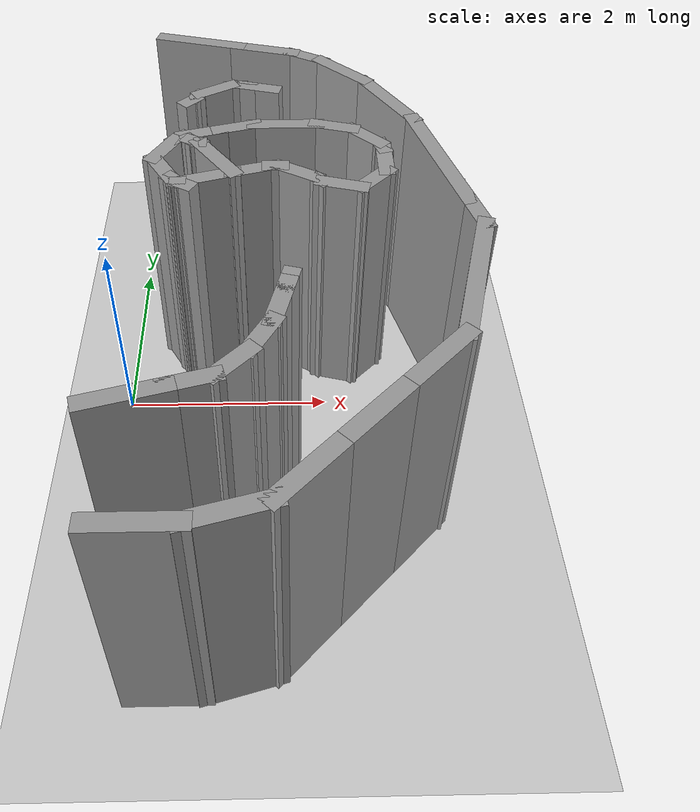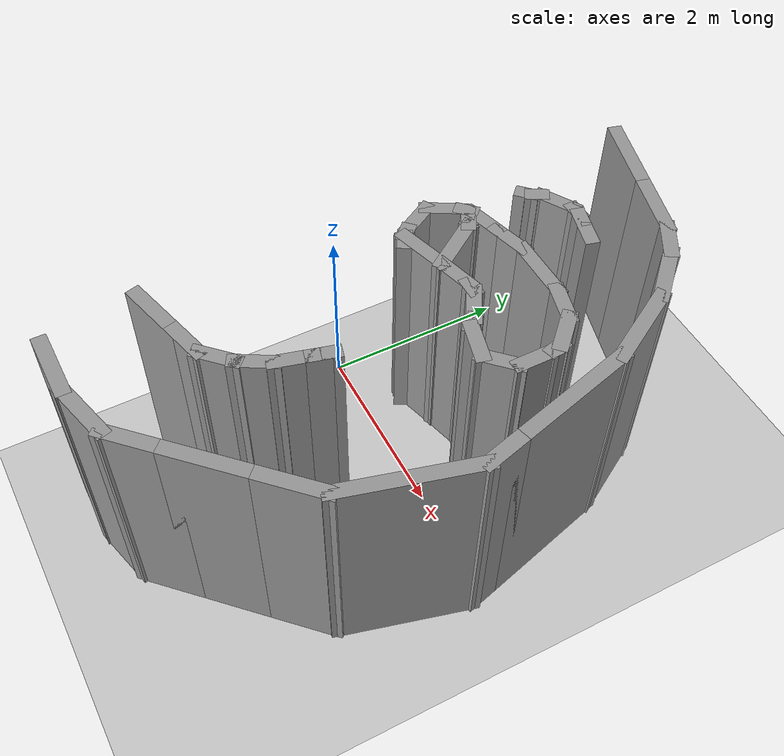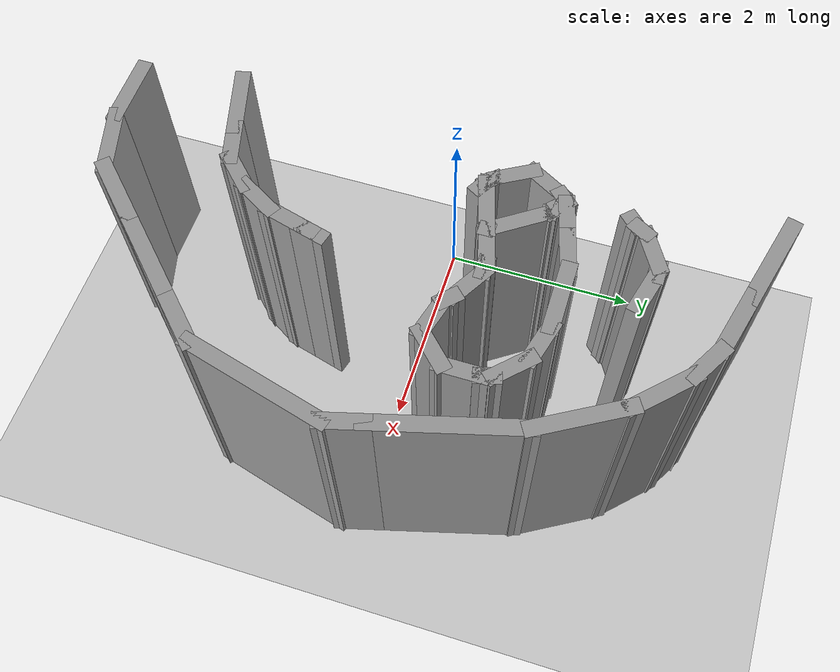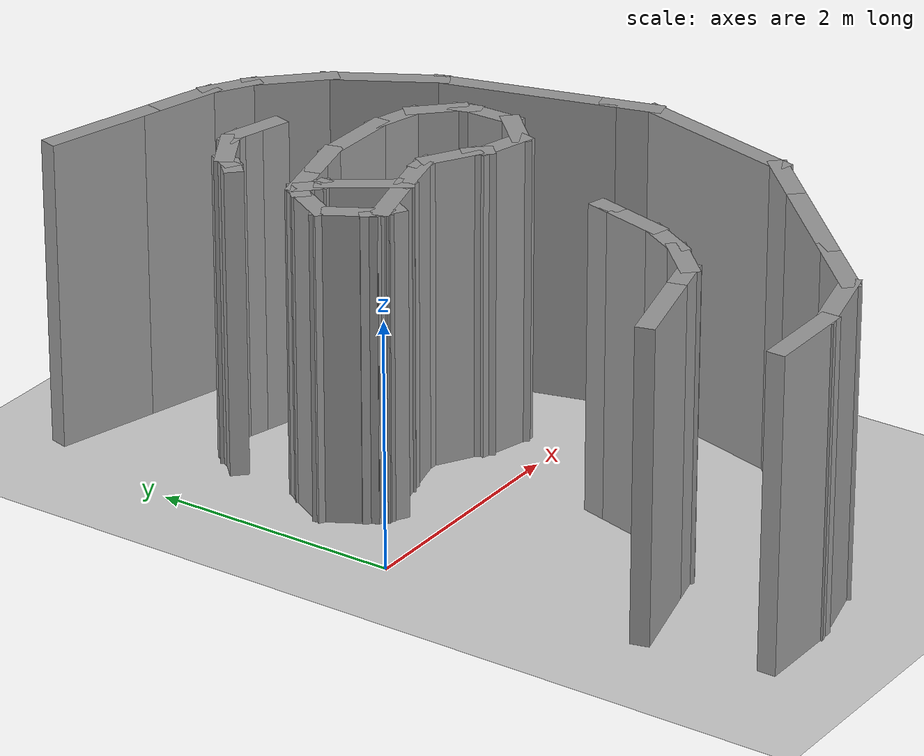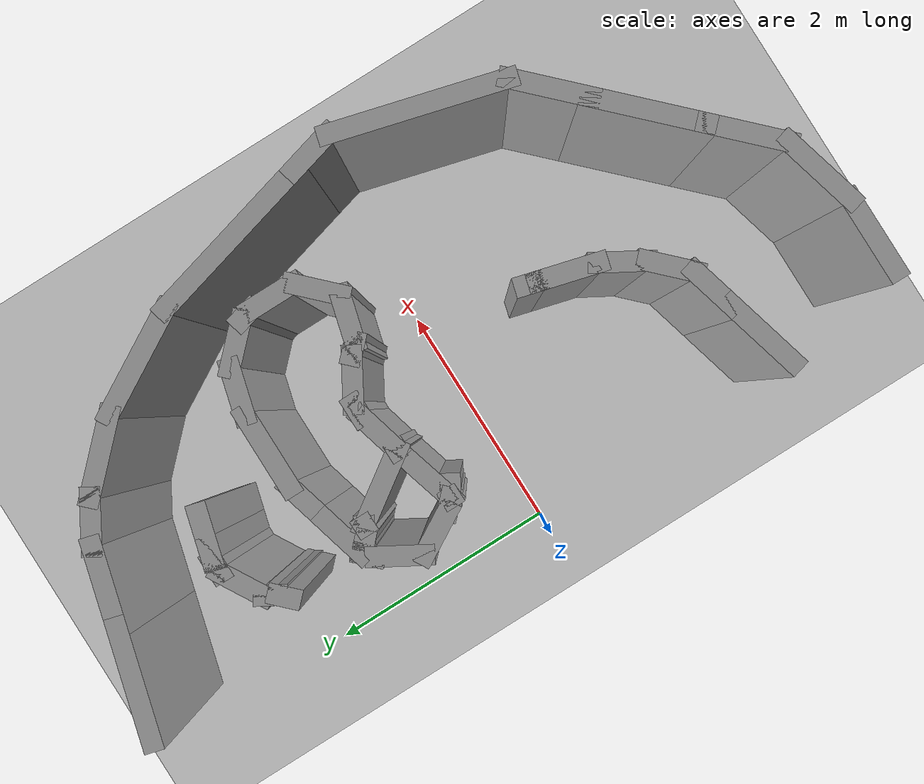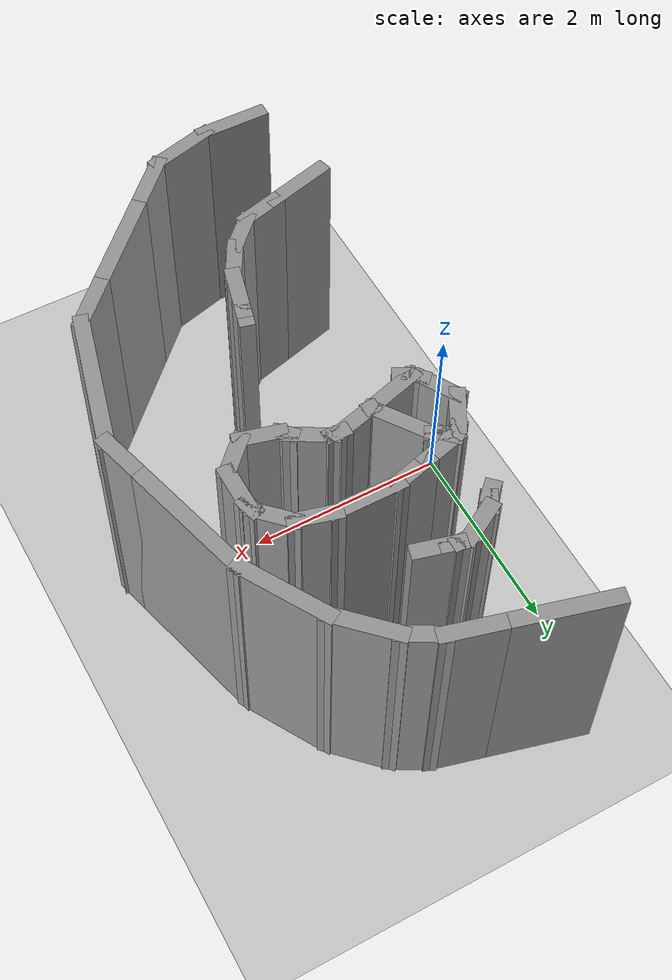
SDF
<sdf version="1.7">
 <world name="default">
  <model name="ground_plane">
   <static>1</static>
   <link name="link">
    <collision name="collision">
     <geometry><plane><normal>0 0 1</normal><size>100 100</size></plane></geometry>
     <surface><friction><ode><mu>100</mu><mu2>50</mu2></ode></friction></surface>
    </collision>
    <visual name="visual">
     <cast_shadows>0</cast_shadows>
     <geometry><plane><normal>0 0 1</normal><size>100 100</size></plane></geometry>
     <material>
      <script><uri>file://media/materials/scripts/gazebo.material</uri><name>Gazebo/Grey</name></script>
     </material>
    </visual>
   </link>
  </model>
  <model name="Untitled">
   <pose>0.106994 0.053998 0 0 -0 0</pose>
   <link name="Wall_103">
    <collision name="Wall_103_Collision">
     <geometry><box><size>0.75 0.15 2.5</size></box></geometry>
     <pose>0 0 1.25 0 -0 0</pose>
    </collision>
    <visual name="Wall_103_Visual">
     <pose>0 0 1.25 0 -0 0</pose>
     <geometry><box><size>0.75 0.15 2.5</size></box></geometry>
     <material>
      <script><uri>file://media/materials/scripts/gazebo.material</uri><name>Gazebo/Grey</name></script>
      <ambient>1 1 1 1</ambient>
     </material>
     <meta><layer>0</layer></meta>
    </visual>
    <pose>0.34506 -2.08506 0 0 -0 0.261799</pose>
   </link>
   <link name="Wall_104">
    <collision name="Wall_104_Collision">
     <geometry><box><size>0.5 0.15 2.5</size></box></geometry>
     <pose>0 0 1.25 0 -0 0</pose>
    </collision>
    <visual name="Wall_104_Visual">
     <pose>0 0 1.25 0 -0 0</pose>
     <geometry><box><size>0.5 0.15 2.5</size></box></geometry>
     <material>
      <script><uri>file://media/materials/scripts/gazebo.material</uri><name>Gazebo/Grey</name></script>
      <ambient>1 1 1 1</ambient>
     </material>
     <meta><layer>0</layer></meta>
    </visual>
    <pose>0.803875 -1.96212 0 0 -0 0.261799</pose>
   </link>
   <link name="Wall_105">
    <collision name="Wall_105_Collision">
     <geometry><box><size>0.5 0.15 2.5</size></box></geometry>
     <pose>0 0 1.25 0 -0 0</pose>
    </collision>
    <visual name="Wall_105_Visual">
     <pose>0 0 1.25 0 -0 0</pose>
     <geometry><box><size>0.5 0.15 2.5</size></box></geometry>
     <material>
      <script><uri>file://media/materials/scripts/gazebo.material</uri><name>Gazebo/Grey</name></script>
      <ambient>1 1 1 1</ambient>
     </material>
     <meta><layer>0</layer></meta>
    </visual>
    <pose>1.09666 -1.79309 0 0 -0 0.785398</pose>
   </link>
   <link name="Wall_106">
    <collision name="Wall_106_Collision">
     <geometry><box><size>0.5 0.15 2.5</size></box></geometry>
     <pose>0 0 1.25 0 -0 0</pose>
    </collision>
    <visual name="Wall_106_Visual">
     <pose>0 0 1.25 0 -0 0</pose>
     <geometry><box><size>0.5 0.15 2.5</size></box></geometry>
     <material>
      <script><uri>file://media/materials/scripts/gazebo.material</uri><name>Gazebo/Grey</name></script>
      <ambient>1 1 1 1</ambient>
     </material>
     <meta><layer>0</layer></meta>
    </visual>
    <pose>1.3079 -1.51779 0 0 -0 1.0472</pose>
   </link>
   <link name="Wall_107">
    <collision name="Wall_107_Collision">
     <geometry><box><size>0.5 0.15 2.5</size></box></geometry>
     <pose>0 0 1.25 0 -0 0</pose>
    </collision>
    <visual name="Wall_107_Visual">
     <pose>0 0 1.25 0 -0 0</pose>
     <geometry><box><size>0.5 0.15 2.5</size></box></geometry>
     <material>
      <script><uri>file://media/materials/scripts/gazebo.material</uri><name>Gazebo/Grey</name></script>
      <ambient>1 1 1 1</ambient>
     </material>
     <meta><layer>0</layer></meta>
    </visual>
    <pose>1.44069 -1.1972 0 0 -0 1.309</pose>
   </link>
   <link name="Wall_108">
    <collision name="Wall_108_Collision">
     <geometry><box><size>0.25 0.15 2.5</size></box></geometry>
     <pose>0 0 1.25 0 -0 0</pose>
    </collision>
    <visual name="Wall_108_Visual">
     <pose>0 0 1.25 0 -0 0</pose>
     <geometry><box><size>0.25 0.15 2.5</size></box></geometry>
     <material>
      <script><uri>file://media/materials/scripts/gazebo.material</uri><name>Gazebo/Grey</name></script>
      <ambient>1 1 1 1</ambient>
     </material>
     <meta><layer>0</layer></meta>
    </visual>
    <pose>1.49893 -0.979863 0 0 -0 1.309</pose>
   </link>
   <link name="Wall_109">
    <collision name="Wall_109_Collision">
     <geometry><box><size>0.25 0.15 2.5</size></box></geometry>
     <pose>0 0 1.25 0 -0 0</pose>
    </collision>
    <visual name="Wall_109_Visual">
     <pose>0 0 1.25 0 -0 0</pose>
     <geometry><box><size>0.25 0.15 2.5</size></box></geometry>
     <material>
      <script><uri>file://media/materials/scripts/gazebo.material</uri><name>Gazebo/Grey</name></script>
      <ambient>1 1 1 1</ambient>
     </material>
     <meta><layer>0</layer></meta>
    </visual>
    <pose>1.52481 -0.883271 0 0 -0 1.309</pose>
   </link>
   <link name="Wall_115">
    <collision name="Wall_115_Collision">
     <geometry><box><size>0.25 0.15 2.5</size></box></geometry>
     <pose>0 0 1.25 0 -0 0</pose>
    </collision>
    <visual name="Wall_115_Visual">
     <pose>0 0 1.25 0 -0 0</pose>
     <geometry><box><size>0.25 0.15 2.5</size></box></geometry>
     <material>
      <script><uri>file://media/materials/scripts/gazebo.material</uri><name>Gazebo/Grey</name></script>
      <ambient>1 1 1 1</ambient>
     </material>
     <meta><layer>0</layer></meta>
    </visual>
    <pose>0.576492 1.12411 0 0 -0 -0.785398</pose>
   </link>
   <link name="Wall_116">
    <collision name="Wall_116_Collision">
     <geometry><box><size>0.25 0.15 2.5</size></box></geometry>
     <pose>0 0 1.25 0 -0 0</pose>
    </collision>
    <visual name="Wall_116_Visual">
     <pose>0 0 1.25 0 -0 0</pose>
     <geometry><box><size>0.25 0.15 2.5</size></box></geometry>
     <material>
      <script><uri>file://media/materials/scripts/gazebo.material</uri><name>Gazebo/Grey</name></script>
      <ambient>1 1 1 1</ambient>
     </material>
     <meta><layer>0</layer></meta>
    </visual>
    <pose>0.655149 1.06376 0 0 -0 -0.523599</pose>
   </link>
   <link name="Wall_117">
    <collision name="Wall_117_Collision">
     <geometry><box><size>0.15 0.15 2.5</size></box></geometry>
     <pose>0 0 1.25 0 -0 0</pose>
    </collision>
    <visual name="Wall_117_Visual">
     <pose>0 0 1.25 0 -0 0</pose>
     <geometry><box><size>0.15 0.15 2.5</size></box></geometry>
     <material>
      <script><uri>file://media/materials/scripts/gazebo.material</uri><name>Gazebo/Grey</name></script>
      <ambient>1 1 1 1</ambient>
     </material>
     <meta><layer>0</layer></meta>
    </visual>
    <pose>0.69845 1.03876 0 0 -0 0</pose>
   </link>
   <link name="Wall_118">
    <collision name="Wall_118_Collision">
     <geometry><box><size>0.737851 0.15 2.5</size></box></geometry>
     <pose>0 0 1.25 0 -0 0</pose>
    </collision>
    <visual name="Wall_118_Visual">
     <pose>0 0 1.25 0 -0 0</pose>
     <geometry><box><size>0.737851 0.15 2.5</size></box></geometry>
     <material>
      <script><uri>file://media/materials/scripts/gazebo.material</uri><name>Gazebo/Grey</name></script>
      <ambient>1 1 1 1</ambient>
     </material>
     <meta><layer>0</layer></meta>
    </visual>
    <pose>0.864862 0.796476 0 0 -0 -0.968945</pose>
   </link>
   <link name="Wall_119">
    <collision name="Wall_119_Collision">
     <geometry><box><size>0.15 0.15 2.5</size></box></geometry>
     <pose>0 0 1.25 0 -0 0</pose>
    </collision>
    <visual name="Wall_119_Visual">
     <pose>0 0 1.25 0 -0 0</pose>
     <geometry><box><size>0.15 0.15 2.5</size></box></geometry>
     <material>
      <script><uri>file://media/materials/scripts/gazebo.material</uri><name>Gazebo/Grey</name></script>
      <ambient>1 1 1 1</ambient>
     </material>
     <meta><layer>0</layer></meta>
    </visual>
    <pose>1.03127 0.554196 0 0 -0 0</pose>
   </link>
   <link name="Wall_120">
    <collision name="Wall_120_Collision">
     <geometry><box><size>0.15 0.15 2.5</size></box></geometry>
     <pose>0 0 1.25 0 -0 0</pose>
    </collision>
    <visual name="Wall_120_Visual">
     <pose>0 0 1.25 0 -0 0</pose>
     <geometry><box><size>0.15 0.15 2.5</size></box></geometry>
     <material>
      <script><uri>file://media/materials/scripts/gazebo.material</uri><name>Gazebo/Grey</name></script>
      <ambient>1 1 1 1</ambient>
     </material>
     <meta><layer>0</layer></meta>
    </visual>
    <pose>1.03127 0.554196 0 0 -0 0</pose>
   </link>
   <link name="Wall_127">
    <collision name="Wall_127_Collision">
     <geometry><box><size>0.25 0.15 2.5</size></box></geometry>
     <pose>0 0 1.25 0 -0 0</pose>
    </collision>
    <visual name="Wall_127_Visual">
     <pose>0 0 1.25 0 -0 0</pose>
     <geometry><box><size>0.25 0.15 2.5</size></box></geometry>
     <material>
      <script><uri>file://media/materials/scripts/gazebo.material</uri><name>Gazebo/Grey</name></script>
      <ambient>1 1 1 1</ambient>
     </material>
     <meta><layer>0</layer></meta>
    </visual>
    <pose>0.576451 1.78668 0 0 -0 0.785398</pose>
   </link>
   <link name="Wall_128">
    <collision name="Wall_128_Collision">
     <geometry><box><size>0.25 0.15 2.5</size></box></geometry>
     <pose>0 0 1.25 0 -0 0</pose>
    </collision>
    <visual name="Wall_128_Visual">
     <pose>0 0 1.25 0 -0 0</pose>
     <geometry><box><size>0.25 0.15 2.5</size></box></geometry>
     <material>
      <script><uri>file://media/materials/scripts/gazebo.material</uri><name>Gazebo/Grey</name></script>
      <ambient>1 1 1 1</ambient>
     </material>
     <meta><layer>0</layer></meta>
    </visual>
    <pose>0.636807 1.86534 0 0 -0 1.0472</pose>
   </link>
   <link name="Wall_129">
    <collision name="Wall_129_Collision">
     <geometry><box><size>0.5 0.15 2.5</size></box></geometry>
     <pose>0 0 1.25 0 -0 0</pose>
    </collision>
    <visual name="Wall_129_Visual">
     <pose>0 0 1.25 0 -0 0</pose>
     <geometry><box><size>0.5 0.15 2.5</size></box></geometry>
     <material>
      <script><uri>file://media/materials/scripts/gazebo.material</uri><name>Gazebo/Grey</name></script>
      <ambient>1 1 1 1</ambient>
     </material>
     <meta><layer>0</layer></meta>
    </visual>
    <pose>0.813361 1.99614 0 0 -0 0.523599</pose>
   </link>
   <link name="Wall_130">
    <collision name="Wall_130_Collision">
     <geometry><box><size>0.25 0.15 2.5</size></box></geometry>
     <pose>0 0 1.25 0 -0 0</pose>
    </collision>
    <visual name="Wall_130_Visual">
     <pose>0 0 1.25 0 -0 0</pose>
     <geometry><box><size>0.25 0.15 2.5</size></box></geometry>
     <material>
      <script><uri>file://media/materials/scripts/gazebo.material</uri><name>Gazebo/Grey</name></script>
      <ambient>1 1 1 1</ambient>
     </material>
     <meta><layer>0</layer></meta>
    </visual>
    <pose>1.01492 2.08364 0 0 -0 0</pose>
   </link>
   <link name="Wall_131">
    <collision name="Wall_131_Collision">
     <geometry><box><size>0.25 0.15 2.5</size></box></geometry>
     <pose>0 0 1.25 0 -0 0</pose>
    </collision>
    <visual name="Wall_131_Visual">
     <pose>0 0 1.25 0 -0 0</pose>
     <geometry><box><size>0.25 0.15 2.5</size></box></geometry>
     <material>
      <script><uri>file://media/materials/scripts/gazebo.material</uri><name>Gazebo/Grey</name></script>
      <ambient>1 1 1 1</ambient>
     </material>
     <meta><layer>0</layer></meta>
    </visual>
    <pose>1.11321 2.0707 0 0 -0 -0.261799</pose>
   </link>
   <link name="Wall_133">
    <collision name="Wall_133_Collision">
     <geometry><box><size>0.5 0.15 2.5</size></box></geometry>
     <pose>0 0 1.25 0 -0 0</pose>
    </collision>
    <visual name="Wall_133_Visual">
     <pose>0 0 1.25 0 -0 0</pose>
     <geometry><box><size>0.5 0.15 2.5</size></box></geometry>
     <material>
      <script><uri>file://media/materials/scripts/gazebo.material</uri><name>Gazebo/Grey</name></script>
      <ambient>1 1 1 1</ambient>
     </material>
     <meta><layer>0</layer></meta>
    </visual>
    <pose>1.23395 2.03835 0 0 -0 -0.261799</pose>
   </link>
   <link name="Wall_30">
    <collision name="Wall_30_Collision">
     <geometry><box><size>0.75 0.15 2.5</size></box></geometry>
     <pose>0 0 1.25 0 -0 0</pose>
    </collision>
    <visual name="Wall_30_Visual">
     <pose>0 0 1.25 0 -0 0</pose>
     <geometry><box><size>0.75 0.15 2.5</size></box></geometry>
     <material>
      <script><uri>file://media/materials/scripts/gazebo.material</uri><name>Gazebo/Grey</name></script>
      <ambient>1 1 1 1</ambient>
     </material>
     <meta><layer>0</layer></meta>
    </visual>
    <pose>0.520053 -3.1308 0 0 -0 0</pose>
   </link>
   <link name="Wall_31">
    <collision name="Wall_31_Collision">
     <geometry><box><size>0.75 0.15 2.5</size></box></geometry>
     <pose>0 0 1.25 0 -0 0</pose>
    </collision>
    <visual name="Wall_31_Visual">
     <pose>0 0 1.25 0 -0 0</pose>
     <geometry><box><size>0.75 0.15 2.5</size></box></geometry>
     <material>
      <script><uri>file://media/materials/scripts/gazebo.material</uri><name>Gazebo/Grey</name></script>
      <ambient>1 1 1 1</ambient>
     </material>
     <meta><layer>0</layer></meta>
    </visual>
    <pose>1.10983 -3.05316 0 0 -0 0.261799</pose>
   </link>
   <link name="Wall_32">
    <collision name="Wall_32_Collision">
     <geometry><box><size>0.75 0.15 2.5</size></box></geometry>
     <pose>0 0 1.25 0 -0 0</pose>
    </collision>
    <visual name="Wall_32_Visual">
     <pose>0 0 1.25 0 -0 0</pose>
     <geometry><box><size>0.75 0.15 2.5</size></box></geometry>
     <material>
      <script><uri>file://media/materials/scripts/gazebo.material</uri><name>Gazebo/Grey</name></script>
      <ambient>1 1 1 1</ambient>
     </material>
     <meta><layer>0</layer></meta>
    </visual>
    <pose>1.61174 -2.76338 0 0 -0 0.785398</pose>
   </link>
   <link name="Wall_33">
    <collision name="Wall_33_Collision">
     <geometry><box><size>1 0.15 2.5</size></box></geometry>
     <pose>0 0 1.25 0 -0 0</pose>
    </collision>
    <visual name="Wall_33_Visual">
     <pose>0 0 1.25 0 -0 0</pose>
     <geometry><box><size>1 0.15 2.5</size></box></geometry>
     <material>
      <script><uri>file://media/materials/scripts/gazebo.material</uri><name>Gazebo/Grey</name></script>
      <ambient>1 1 1 1</ambient>
     </material>
     <meta><layer>0</layer></meta>
    </visual>
    <pose>2.12439 -2.25073 0 0 -0 0.785398</pose>
   </link>
   <link name="Wall_34">
    <collision name="Wall_34_Collision">
     <geometry><box><size>0.75 0.15 2.5</size></box></geometry>
     <pose>0 0 1.25 0 -0 0</pose>
    </collision>
    <visual name="Wall_34_Visual">
     <pose>0 0 1.25 0 -0 0</pose>
     <geometry><box><size>0.75 0.15 2.5</size></box></geometry>
     <material>
      <script><uri>file://media/materials/scripts/gazebo.material</uri><name>Gazebo/Grey</name></script>
      <ambient>1 1 1 1</ambient>
     </material>
     <meta><layer>0</layer></meta>
    </visual>
    <pose>2.63705 -1.73808 0 0 -0 0.785398</pose>
   </link>
   <link name="Wall_35">
    <collision name="Wall_35_Collision">
     <geometry><box><size>1.5 0.15 2.5</size></box></geometry>
     <pose>0 0 1.25 0 -0 0</pose>
    </collision>
    <visual name="Wall_35_Visual">
     <pose>0 0 1.25 0 -0 0</pose>
     <geometry><box><size>1.5 0.15 2.5</size></box></geometry>
     <material>
      <script><uri>file://media/materials/scripts/gazebo.material</uri><name>Gazebo/Grey</name></script>
      <ambient>1 1 1 1</ambient>
     </material>
     <meta><layer>0</layer></meta>
    </visual>
    <pose>3.02388 -0.873943 0 0 -0 1.309</pose>
   </link>
   <link name="Wall_36">
    <collision name="Wall_36_Collision">
     <geometry><box><size>0.5 0.15 2.5</size></box></geometry>
     <pose>0 0 1.25 0 -0 0</pose>
    </collision>
    <visual name="Wall_36_Visual">
     <pose>0 0 1.25 0 -0 0</pose>
     <geometry><box><size>0.5 0.15 2.5</size></box></geometry>
     <material>
      <script><uri>file://media/materials/scripts/gazebo.material</uri><name>Gazebo/Grey</name></script>
      <ambient>1 1 1 1</ambient>
     </material>
     <meta><layer>0</layer></meta>
    </visual>
    <pose>3.15329 -0.052906 0 0 -0 1.8326</pose>
   </link>
   <link name="Wall_37">
    <collision name="Wall_37_Collision">
     <geometry><box><size>1.5 0.15 2.5</size></box></geometry>
     <pose>0 0 1.25 0 -0 0</pose>
    </collision>
    <visual name="Wall_37_Visual">
     <pose>0 0 1.25 0 -0 0</pose>
     <geometry><box><size>1.5 0.15 2.5</size></box></geometry>
     <material>
      <script><uri>file://media/materials/scripts/gazebo.material</uri><name>Gazebo/Grey</name></script>
      <ambient>1 1 1 1</ambient>
     </material>
     <meta><layer>0</layer></meta>
    </visual>
    <pose>2.93329 0.768131 0 0 -0 1.8326</pose>
   </link>
   <link name="Wall_38">
    <collision name="Wall_38_Collision">
     <geometry><box><size>1 0.15 2.5</size></box></geometry>
     <pose>0 0 1.25 0 -0 0</pose>
    </collision>
    <visual name="Wall_38_Visual">
     <pose>0 0 1.25 0 -0 0</pose>
     <geometry><box><size>1 0.15 2.5</size></box></geometry>
     <material>
      <script><uri>file://media/materials/scripts/gazebo.material</uri><name>Gazebo/Grey</name></script>
      <ambient>1 1 1 1</ambient>
     </material>
     <meta><layer>0</layer></meta>
    </visual>
    <pose>2.54609 1.78819 0 0 -0 2.0944</pose>
   </link>
   <link name="Wall_39">
    <collision name="Wall_39_Collision">
     <geometry><box><size>0.75 0.15 2.5</size></box></geometry>
     <pose>0 0 1.25 0 -0 0</pose>
    </collision>
    <visual name="Wall_39_Visual">
     <pose>0 0 1.25 0 -0 0</pose>
     <geometry><box><size>0.75 0.15 2.5</size></box></geometry>
     <material>
      <script><uri>file://media/materials/scripts/gazebo.material</uri><name>Gazebo/Grey</name></script>
      <ambient>1 1 1 1</ambient>
     </material>
     <meta><layer>0</layer></meta>
    </visual>
    <pose>2.12146 2.36838 0 0 -0 2.35619</pose>
   </link>
   <link name="Wall_40">
    <collision name="Wall_40_Collision">
     <geometry><box><size>0.5 0.15 2.5</size></box></geometry>
     <pose>0 0 1.25 0 -0 0</pose>
    </collision>
    <visual name="Wall_40_Visual">
     <pose>0 0 1.25 0 -0 0</pose>
     <geometry><box><size>0.5 0.15 2.5</size></box></geometry>
     <material>
      <script><uri>file://media/materials/scripts/gazebo.material</uri><name>Gazebo/Grey</name></script>
      <ambient>1 1 1 1</ambient>
     </material>
     <meta><layer>0</layer></meta>
    </visual>
    <pose>1.75777 2.66802 0 0 -0 2.61799</pose>
   </link>
   <link name="Wall_41">
    <collision name="Wall_41_Collision">
     <geometry><box><size>0.75 0.15 2.5</size></box></geometry>
     <pose>0 0 1.25 0 -0 0</pose>
    </collision>
    <visual name="Wall_41_Visual">
     <pose>0 0 1.25 0 -0 0</pose>
     <geometry><box><size>0.75 0.15 2.5</size></box></geometry>
     <material>
      <script><uri>file://media/materials/scripts/gazebo.material</uri><name>Gazebo/Grey</name></script>
      <ambient>1 1 1 1</ambient>
     </material>
     <meta><layer>0</layer></meta>
    </visual>
    <pose>1.31644 2.83316 0 0 -0 2.87979</pose>
   </link>
   <link name="Wall_42">
    <collision name="Wall_42_Collision">
     <geometry><box><size>1 0.15 2.5</size></box></geometry>
     <pose>0 0 1.25 0 -0 0</pose>
    </collision>
    <visual name="Wall_42_Visual">
     <pose>0 0 1.25 0 -0 0</pose>
     <geometry><box><size>1 0.15 2.5</size></box></geometry>
     <material>
      <script><uri>file://media/materials/scripts/gazebo.material</uri><name>Gazebo/Grey</name></script>
      <ambient>1 1 1 1</ambient>
     </material>
     <meta><layer>0</layer></meta>
    </visual>
    <pose>0.616144 3.02081 0 0 -0 2.87979</pose>
   </link>
   <link name="Wall_74">
    <collision name="Wall_74_Collision">
     <geometry><box><size>0.25 0.15 2.5</size></box></geometry>
     <pose>0 0 1.25 0 -0 0</pose>
    </collision>
    <visual name="Wall_74_Visual">
     <pose>0 0 1.25 0 -0 0</pose>
     <geometry><box><size>0.25 0.15 2.5</size></box></geometry>
     <material>
      <script><uri>file://media/materials/scripts/gazebo.material</uri><name>Gazebo/Grey</name></script>
      <ambient>1 1 1 1</ambient>
     </material>
     <meta><layer>0</layer></meta>
    </visual>
    <pose>0.584438 0.386827 0 0 -0 2.61799</pose>
   </link>
   <link name="Wall_75">
    <collision name="Wall_75_Collision">
     <geometry><box><size>0.25 0.15 2.5</size></box></geometry>
     <pose>0 0 1.25 0 -0 0</pose>
    </collision>
    <visual name="Wall_75_Visual">
     <pose>0 0 1.25 0 -0 0</pose>
     <geometry><box><size>0.25 0.15 2.5</size></box></geometry>
     <material>
      <script><uri>file://media/materials/scripts/gazebo.material</uri><name>Gazebo/Grey</name></script>
      <ambient>1 1 1 1</ambient>
     </material>
     <meta><layer>0</layer></meta>
    </visual>
    <pose>0.505782 0.447183 0 0 -0 2.35619</pose>
   </link>
   <link name="Wall_76">
    <collision name="Wall_76_Collision">
     <geometry><box><size>0.5 0.15 2.5</size></box></geometry>
     <pose>0 0 1.25 0 -0 0</pose>
    </collision>
    <visual name="Wall_76_Visual">
     <pose>0 0 1.25 0 -0 0</pose>
     <geometry><box><size>0.5 0.15 2.5</size></box></geometry>
     <material>
      <script><uri>file://media/materials/scripts/gazebo.material</uri><name>Gazebo/Grey</name></script>
      <ambient>1 1 1 1</ambient>
     </material>
     <meta><layer>0</layer></meta>
    </visual>
    <pose>0.382926 0.634092 0 0 -0 2.0944</pose>
   </link>
   <link name="Wall_79">
    <collision name="Wall_79_Collision">
     <geometry><box><size>0.5 0.15 2.5</size></box></geometry>
     <pose>0 0 1.25 0 -0 0</pose>
    </collision>
    <visual name="Wall_79_Visual">
     <pose>0 0 1.25 0 -0 0</pose>
     <geometry><box><size>0.5 0.15 2.5</size></box></geometry>
     <material>
      <script><uri>file://media/materials/scripts/gazebo.material</uri><name>Gazebo/Grey</name></script>
      <ambient>1 1 1 1</ambient>
     </material>
     <meta><layer>0</layer></meta>
    </visual>
    <pose>0.382926 0.937201 0 0 -0 1.0472</pose>
   </link>
   <link name="Wall_80">
    <collision name="Wall_80_Collision">
     <geometry><box><size>0.25 0.15 2.5</size></box></geometry>
     <pose>0 0 1.25 0 -0 0</pose>
    </collision>
    <visual name="Wall_80_Visual">
     <pose>0 0 1.25 0 -0 0</pose>
     <geometry><box><size>0.25 0.15 2.5</size></box></geometry>
     <material>
      <script><uri>file://media/materials/scripts/gazebo.material</uri><name>Gazebo/Grey</name></script>
      <ambient>1 1 1 1</ambient>
     </material>
     <meta><layer>0</layer></meta>
    </visual>
    <pose>0.505782 1.12411 0 0 -0 0.785398</pose>
   </link>
   <link name="Wall_81">
    <collision name="Wall_81_Collision">
     <geometry><box><size>0.5 0.15 2.5</size></box></geometry>
     <pose>0 0 1.25 0 -0 0</pose>
    </collision>
    <visual name="Wall_81_Visual">
     <pose>0 0 1.25 0 -0 0</pose>
     <geometry><box><size>0.5 0.15 2.5</size></box></geometry>
     <material>
      <script><uri>file://media/materials/scripts/gazebo.material</uri><name>Gazebo/Grey</name></script>
      <ambient>1 1 1 1</ambient>
     </material>
     <meta><layer>0</layer></meta>
    </visual>
    <pose>0.710174 1.20476 0 0 -0 0.261799</pose>
   </link>
   <link name="Wall_82">
    <collision name="Wall_82_Collision">
     <geometry><box><size>0.5 0.15 2.5</size></box></geometry>
     <pose>0 0 1.25 0 -0 0</pose>
    </collision>
    <visual name="Wall_82_Visual">
     <pose>0 0 1.25 0 -0 0</pose>
     <geometry><box><size>0.5 0.15 2.5</size></box></geometry>
     <material>
      <script><uri>file://media/materials/scripts/gazebo.material</uri><name>Gazebo/Grey</name></script>
      <ambient>1 1 1 1</ambient>
     </material>
     <meta><layer>0</layer></meta>
    </visual>
    <pose>1.04825 1.29535 0 0 -0 0.261799</pose>
   </link>
   <link name="Wall_83">
    <collision name="Wall_83_Collision">
     <geometry><box><size>0.75 0.15 2.5</size></box></geometry>
     <pose>0 0 1.25 0 -0 0</pose>
    </collision>
    <visual name="Wall_83_Visual">
     <pose>0 0 1.25 0 -0 0</pose>
     <geometry><box><size>0.75 0.15 2.5</size></box></geometry>
     <material>
      <script><uri>file://media/materials/scripts/gazebo.material</uri><name>Gazebo/Grey</name></script>
      <ambient>1 1 1 1</ambient>
     </material>
     <meta><layer>0</layer></meta>
    </visual>
    <pose>1.51728 1.34064 0 0 -0 0</pose>
   </link>
   <link name="Wall_84">
    <collision name="Wall_84_Collision">
     <geometry><box><size>0.5 0.15 2.5</size></box></geometry>
     <pose>0 0 1.25 0 -0 0</pose>
    </collision>
    <visual name="Wall_84_Visual">
     <pose>0 0 1.25 0 -0 0</pose>
     <geometry><box><size>0.5 0.15 2.5</size></box></geometry>
     <material>
      <script><uri>file://media/materials/scripts/gazebo.material</uri><name>Gazebo/Grey</name></script>
      <ambient>1 1 1 1</ambient>
     </material>
     <meta><layer>0</layer></meta>
    </visual>
    <pose>1.98632 1.29535 0 0 -0 -0.261799</pose>
   </link>
   <link name="Wall_85">
    <collision name="Wall_85_Collision">
     <geometry><box><size>0.5 0.15 2.5</size></box></geometry>
     <pose>0 0 1.25 0 -0 0</pose>
    </collision>
    <visual name="Wall_85_Visual">
     <pose>0 0 1.25 0 -0 0</pose>
     <geometry><box><size>0.5 0.15 2.5</size></box></geometry>
     <material>
      <script><uri>file://media/materials/scripts/gazebo.material</uri><name>Gazebo/Grey</name></script>
      <ambient>1 1 1 1</ambient>
     </material>
     <meta><layer>0</layer></meta>
    </visual>
    <pose>2.2791 1.12631 0 0 -0 -0.785398</pose>
   </link>
   <link name="Wall_86">
    <collision name="Wall_86_Collision">
     <geometry><box><size>0.25 0.15 2.5</size></box></geometry>
     <pose>0 0 1.25 0 -0 0</pose>
    </collision>
    <visual name="Wall_86_Visual">
     <pose>0 0 1.25 0 -0 0</pose>
     <geometry><box><size>0.25 0.15 2.5</size></box></geometry>
     <material>
      <script><uri>file://media/materials/scripts/gazebo.material</uri><name>Gazebo/Grey</name></script>
      <ambient>1 1 1 1</ambient>
     </material>
     <meta><layer>0</layer></meta>
    </visual>
    <pose>2.41579 0.954269 0 0 -0 -1.309</pose>
   </link>
   <link name="Wall_87">
    <collision name="Wall_87_Collision">
     <geometry><box><size>0.5 0.15 2.5</size></box></geometry>
     <pose>0 0 1.25 0 -0 0</pose>
    </collision>
    <visual name="Wall_87_Visual">
     <pose>0 0 1.25 0 -0 0</pose>
     <geometry><box><size>0.5 0.15 2.5</size></box></geometry>
     <material>
      <script><uri>file://media/materials/scripts/gazebo.material</uri><name>Gazebo/Grey</name></script>
      <ambient>1 1 1 1</ambient>
     </material>
     <meta><layer>0</layer></meta>
    </visual>
    <pose>2.42873 0.730973 0 0 -0 -1.5708</pose>
   </link>
   <link name="Wall_88">
    <collision name="Wall_88_Collision">
     <geometry><box><size>0.5 0.15 2.5</size></box></geometry>
     <pose>0 0 1.25 0 -0 0</pose>
    </collision>
    <visual name="Wall_88_Visual">
     <pose>0 0 1.25 0 -0 0</pose>
     <geometry><box><size>0.5 0.15 2.5</size></box></geometry>
     <material>
      <script><uri>file://media/materials/scripts/gazebo.material</uri><name>Gazebo/Grey</name></script>
      <ambient>1 1 1 1</ambient>
     </material>
     <meta><layer>0</layer></meta>
    </visual>
    <pose>2.30498 0.432229 0 0 -0 -2.35619</pose>
   </link>
   <link name="Wall_89">
    <collision name="Wall_89_Collision">
     <geometry><box><size>0.5 0.15 2.5</size></box></geometry>
     <pose>0 0 1.25 0 -0 0</pose>
    </collision>
    <visual name="Wall_89_Visual">
     <pose>0 0 1.25 0 -0 0</pose>
     <geometry><box><size>0.5 0.15 2.5</size></box></geometry>
     <material>
      <script><uri>file://media/materials/scripts/gazebo.material</uri><name>Gazebo/Grey</name></script>
      <ambient>1 1 1 1</ambient>
     </material>
     <meta><layer>0</layer></meta>
    </visual>
    <pose>2.0122 0.353779 0 0 -0 2.87979</pose>
   </link>
   <link name="Wall_90">
    <collision name="Wall_90_Collision">
     <geometry><box><size>0.25 0.15 2.5</size></box></geometry>
     <pose>0 0 1.25 0 -0 0</pose>
    </collision>
    <visual name="Wall_90_Visual">
     <pose>0 0 1.25 0 -0 0</pose>
     <geometry><box><size>0.25 0.15 2.5</size></box></geometry>
     <material>
      <script><uri>file://media/materials/scripts/gazebo.material</uri><name>Gazebo/Grey</name></script>
      <ambient>1 1 1 1</ambient>
     </material>
     <meta><layer>0</layer></meta>
    </visual>
    <pose>1.80781 0.434428 0 0 -0 2.35619</pose>
   </link>
   <link name="Wall_91">
    <collision name="Wall_91_Collision">
     <geometry><box><size>0.5 0.15 2.5</size></box></geometry>
     <pose>0 0 1.25 0 -0 0</pose>
    </collision>
    <visual name="Wall_91_Visual">
     <pose>0 0 1.25 0 -0 0</pose>
     <geometry><box><size>0.5 0.15 2.5</size></box></geometry>
     <material>
      <script><uri>file://media/materials/scripts/gazebo.material</uri><name>Gazebo/Grey</name></script>
      <ambient>1 1 1 1</ambient>
     </material>
     <meta><layer>0</layer></meta>
    </visual>
    <pose>1.6209 0.557283 0 0 -0 2.61799</pose>
   </link>
   <link name="Wall_92">
    <collision name="Wall_92_Collision">
     <geometry><box><size>0.25 0.15 2.5</size></box></geometry>
     <pose>0 0 1.25 0 -0 0</pose>
    </collision>
    <visual name="Wall_92_Visual">
     <pose>0 0 1.25 0 -0 0</pose>
     <geometry><box><size>0.25 0.15 2.5</size></box></geometry>
     <material>
      <script><uri>file://media/materials/scripts/gazebo.material</uri><name>Gazebo/Grey</name></script>
      <ambient>1 1 1 1</ambient>
     </material>
     <meta><layer>0</layer></meta>
    </visual>
    <pose>1.41935 0.644783 0 0 -0 3.14159</pose>
   </link>
   <link name="Wall_93">
    <collision name="Wall_93_Collision">
     <geometry><box><size>0.5 0.15 2.5</size></box></geometry>
     <pose>0 0 1.25 0 -0 0</pose>
    </collision>
    <visual name="Wall_93_Visual">
     <pose>0 0 1.25 0 -0 0</pose>
     <geometry><box><size>0.5 0.15 2.5</size></box></geometry>
     <material>
      <script><uri>file://media/materials/scripts/gazebo.material</uri><name>Gazebo/Grey</name></script>
      <ambient>1 1 1 1</ambient>
     </material>
     <meta><layer>0</layer></meta>
    </visual>
    <pose>1.20031 0.59949 0 0 -0 -2.87979</pose>
   </link>
   <link name="Wall_94">
    <collision name="Wall_94_Collision">
     <geometry><box><size>0.660395 0.15 2.5</size></box></geometry>
     <pose>0 0 1.25 0 -0 0</pose>
    </collision>
    <visual name="Wall_94_Visual">
     <pose>0 0 1.25 0 -0 0</pose>
     <geometry><box><size>0.660395 0.15 2.5</size></box></geometry>
     <material>
      <script><uri>file://media/materials/scripts/gazebo.material</uri><name>Gazebo/Grey</name></script>
      <ambient>1 1 1 1</ambient>
     </material>
     <meta><layer>0</layer></meta>
    </visual>
    <pose>0.786205 0.483012 0 0 -0 -2.8589</pose>
   </link>
   <link name="Wall_95">
    <collision name="Wall_95_Collision">
     <geometry><box><size>0.15 0.15 2.5</size></box></geometry>
     <pose>0 0 1.25 0 -0 0</pose>
    </collision>
    <visual name="Wall_95_Visual">
     <pose>0 0 1.25 0 -0 0</pose>
     <geometry><box><size>0.15 0.15 2.5</size></box></geometry>
     <material>
      <script><uri>file://media/materials/scripts/gazebo.material</uri><name>Gazebo/Grey</name></script>
      <ambient>1 1 1 1</ambient>
     </material>
     <meta><layer>0</layer></meta>
    </visual>
    <pose>0.541137 0.411827 0 0 -0 0</pose>
   </link>
   <static>1</static>
  </model>
 </world>
</sdf>
